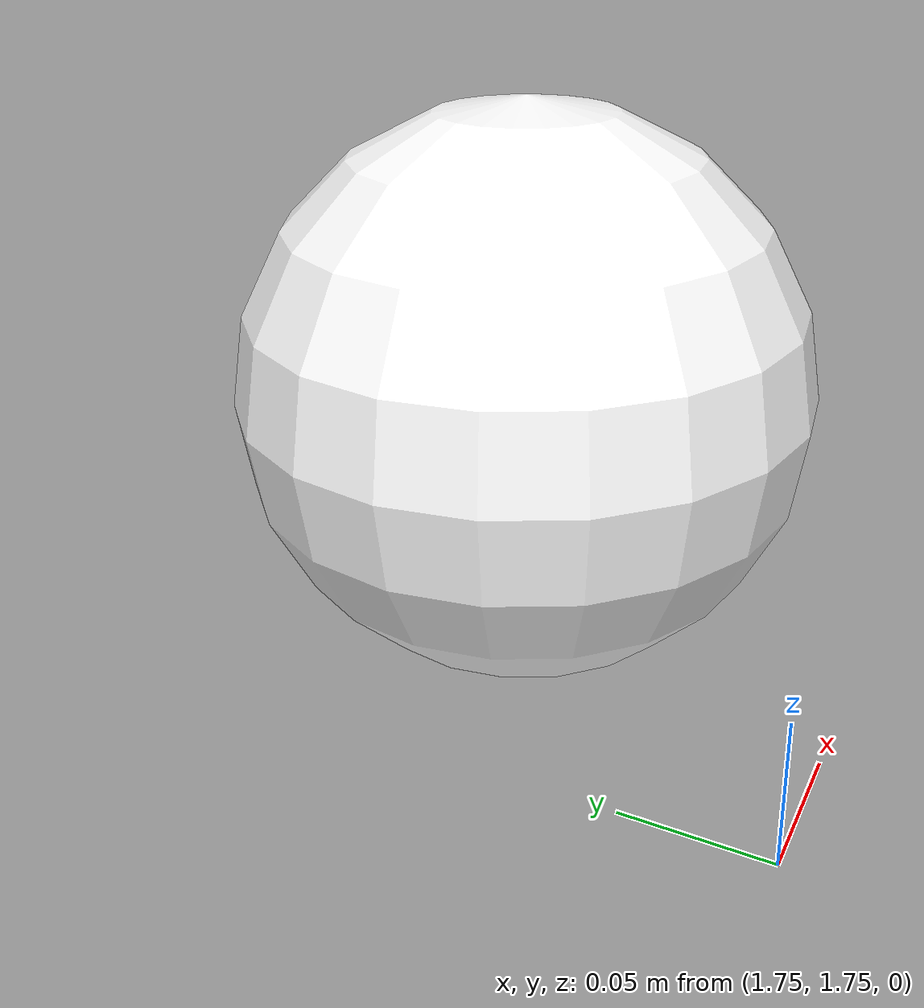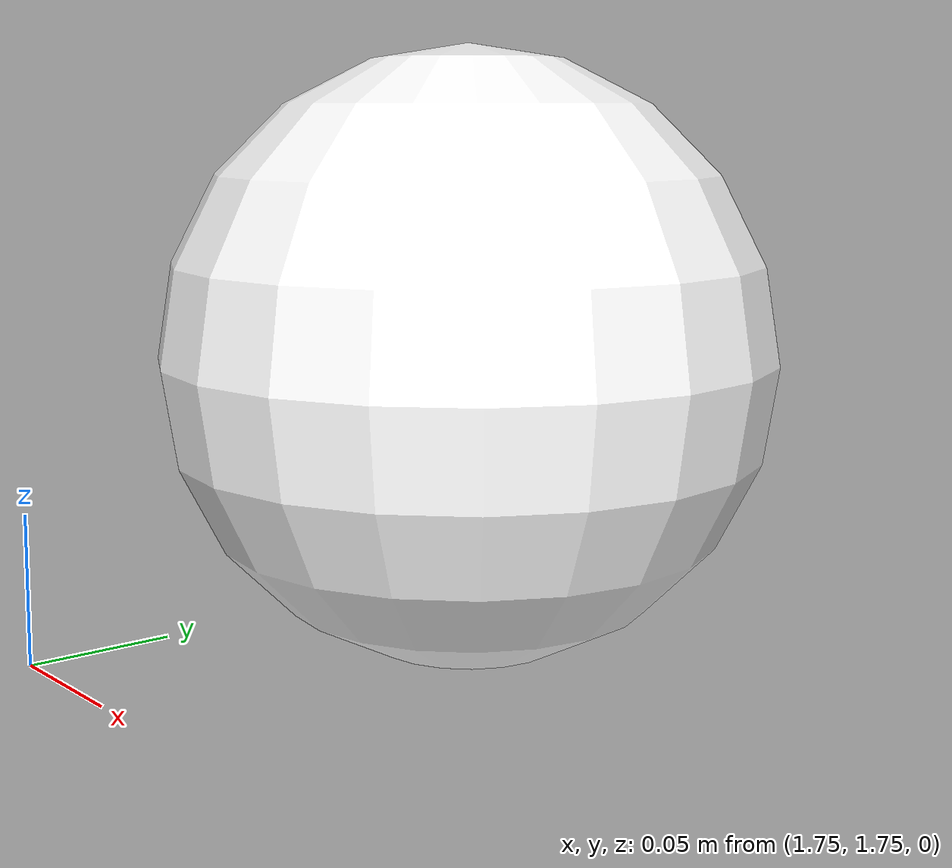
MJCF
<?xml version='1.0' encoding='utf-8'?>
<mujoco model="random_spheres">
  <option timestep="0.01" gravity="0 0 -9.81" />
  <worldbody>
    <geom name="floor" type="plane" size="50 50 0.1" pos="0 0 100" rgba="0.8 0.8 0.8 1" />
    <body name="sphere_0" pos="1.829 1.869 0.1">
      <geom type="sphere" size="0.1" rgba="1 1 1 1" />
      <freejoint />
    </body>
  </worldbody>
</mujoco>
